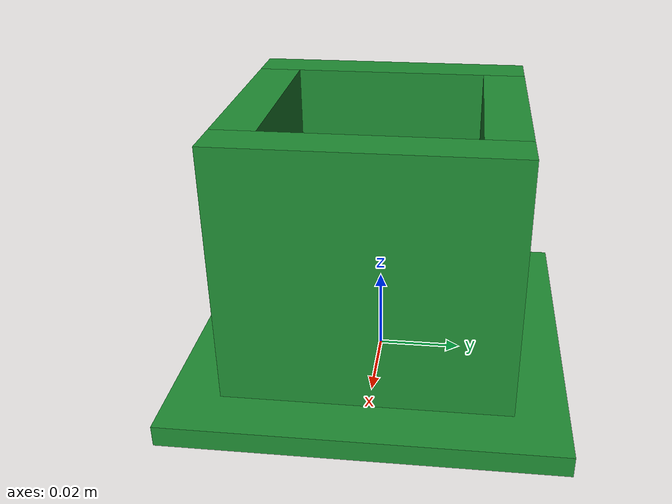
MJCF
<mujoco model="square-hole">
  <asset>
    <material name="hole_green" rgba="0.12 0.55 0.20 1"/>
  </asset>
  <worldbody>
    <body>
      <body name="object">
        <geom name="base" type="box" pos="0 0 0.0025" size="0.045 0.045 0.0025"
              group="0" material="hole_green" friction="1.0 0.01 0.001"/>
        <geom name="wall_pos_x" type="box" pos="0.028 0 0.035" size="0.005 0.033 0.03"
              group="0" material="hole_green" friction="1.0 0.01 0.001"/>
        <geom name="wall_neg_x" type="box" pos="-0.028 0 0.035" size="0.005 0.033 0.03"
              group="0" material="hole_green" friction="1.0 0.01 0.001"/>
        <geom name="wall_pos_y" type="box" pos="0 0.028 0.035" size="0.023 0.005 0.03"
              group="0" material="hole_green" friction="1.0 0.01 0.001"/>
        <geom name="wall_neg_y" type="box" pos="0 -0.028 0.035" size="0.023 0.005 0.03"
              group="0" material="hole_green" friction="1.0 0.01 0.001"/>
        <site name="mouth_site" pos="0 0 0.065" size="0.003" rgba="0 0 0 0"/>
        <site name="axis_site" pos="0 0 0.075" size="0.003" rgba="0 0 0 0"/>
        <site name="bottom_site" pos="0 0 0" size="0.003" rgba="0 0 0 0"/>
        <site name="top_site" pos="0 0 0.065" size="0.003" rgba="0 0 0 0"/>
        <site name="horizontal_radius_site" pos="0.045 0.045 0" size="0.003" rgba="0 0 0 0"/>
      </body>
    </body>
  </worldbody>
</mujoco>
